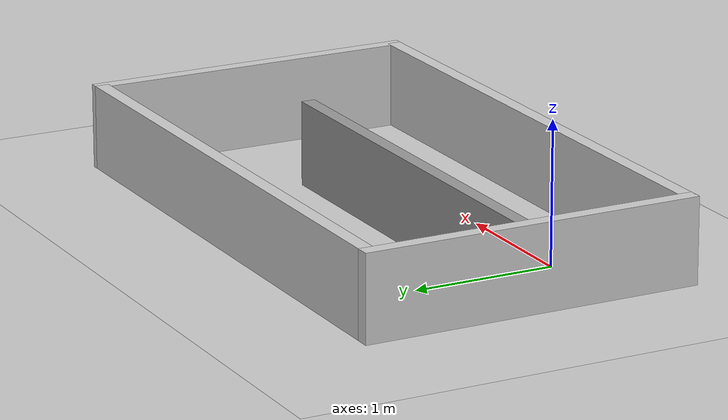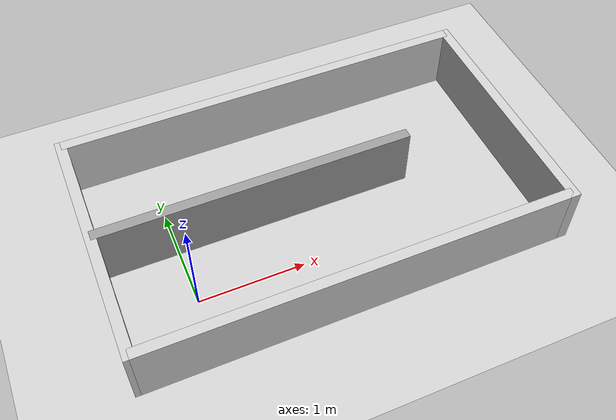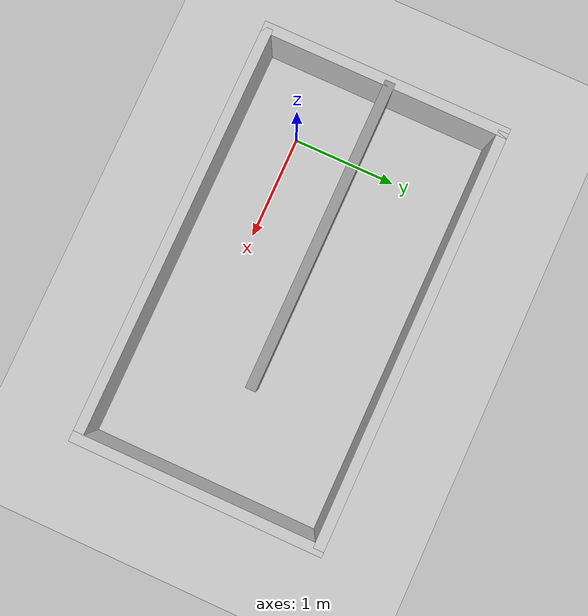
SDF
<?xml version="1.0" ?>
<sdf version="1.6">
  <world name="hospital_world">
    <!-- Ground Plane -->
    <include>
      <uri>model://ground_plane</uri>
    </include>

    <!-- Sunlight -->
    <include>
      <uri>model://sun</uri>
    </include>

    <!-- Hospital Walls -->
    <!-- Main Corridor Walls -->
    <model name="wall_left">
      <static>true</static>
      <link name="link">
        <collision name="collision">
          <geometry>
            <box>
              <size>4 0.1 0.6</size> <!-- Length, Width, Height -->
            </box>
          </geometry>
        </collision>
        <visual name="visual">
          <geometry>
            <box>
              <size>4 0.1 0.6</size> <!-- Length, Width, Height -->
            </box>
          </geometry>
          <material>
            <ambient>0.8 0.8 0.8 1</ambient>
            <diffuse>0.8 0.8 0.8 1</diffuse>
          </material>
        </visual>
        <pose>1.3 1.7 0.3 0 0 0</pose> <!-- Position: x, y, z; Orientation: roll, pitch, yaw -->
      </link>
    </model>

    <model name="wall_right">
      <static>true</static>
      <link name="link">
        <collision name="collision">
          <geometry>
            <box>
              <size>4 0.1 0.6</size> <!-- Length, Width, Height -->
            </box>
          </geometry>
        </collision>
        <visual name="visual">
          <geometry>
            <box>
              <size>4 0.1 0.6</size> <!-- Length, Width, Height -->
            </box>
          </geometry>
          <material>
            <ambient>0.8 0.8 0.8 1</ambient>
            <diffuse>0.8 0.8 0.8 1</diffuse>
          </material>
        </visual>
        <pose>1.3 -0.6 0.3 0 0 0</pose> <!-- Position: x, y, z; Orientation: roll, pitch, yaw -->
      </link>
    </model>

    <model name="wall_back">
      <static>true</static>
      <link name="link">
        <collision name="collision">
          <geometry>
            <box>
              <size>2.4 0.1 0.6</size> <!-- Length, Width, Height -->
            </box>
          </geometry>
        </collision>
        <visual name="visual">
          <geometry>
            <box>
              <size>2.4 0.1 0.6</size> <!-- Length, Width, Height -->
            </box>
          </geometry>
          <material>
            <ambient>0.8 0.8 0.8 1</ambient>
            <diffuse>0.8 0.8 0.8 1</diffuse>
          </material>
        </visual>
        <pose>-0.7 0.55 0.3 0 0 1.5708</pose> <!-- Position: x, y, z; Orientation: roll, pitch, yaw -->
      </link>
    </model>

    <model name="wall_front">
      <static>true</static>
      <link name="link">
        <collision name="collision">
          <geometry>
            <box>
              <size>2.4 0.1 0.6</size> <!-- Length, Width, Height -->
            </box>
          </geometry>
        </collision>
        <visual name="visual">
          <geometry>
            <box>
              <size>2.4 0.1 0.6</size> <!-- Length, Width, Height -->
            </box>
          </geometry>
          <material>
            <ambient>0.8 0.8 0.8 1</ambient>
            <diffuse>0.8 0.8 0.8 1</diffuse>
          </material>
        </visual>
        <pose>3.3 0.55 0.3 0 0 1.5708</pose> <!-- Position: x, y, z; Orientation: roll, pitch, yaw -->
      </link>
    </model>

    <!-- Room Partitions -->
    <model name="partition_1">
      <static>true</static>
      <link name="link">
        <collision name="collision">
          <geometry>
            <box>
              <size>3 0.1 0.6</size> <!-- Length, Width, Height -->
            </box>
          </geometry>
        </collision>
        <visual name="visual">
          <geometry>
            <box>
              <size>3 0.1 0.6</size> <!-- Length, Width, Height -->
            </box>
          </geometry>
          <material>
            <ambient>0.6 0.6 0.6 1</ambient>
            <diffuse>0.6 0.6 0.6 1</diffuse>
          </material>
        </visual>
        <pose>0.8 0.6 0.3 0 0 0</pose> <!-- Position: x, y, z; Orientation: roll, pitch, yaw -->
      </link>
    </model>
  </world>
</sdf>
